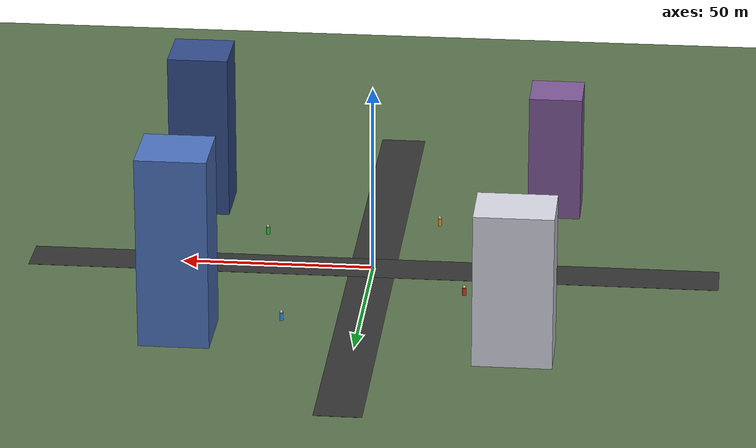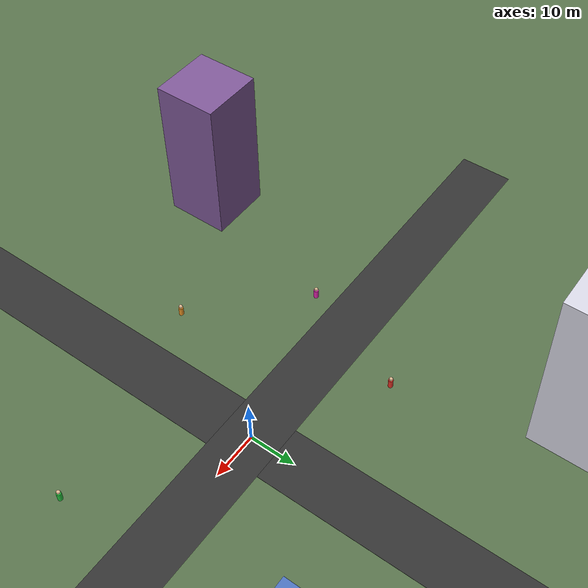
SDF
<sdf version="1.9">
 <world name="mirl_demo">
  <physics name="1ms" type="ignored">
   <max_step_size>0.001</max_step_size>
   <real_time_factor>1.0</real_time_factor>
  </physics>
  <plugin filename="gz-sim-physics-system" name="gz::sim::systems::Physics"/>
  <plugin filename="gz-sim-scene-broadcaster-system" name="gz::sim::systems::SceneBroadcaster"/>
  <plugin filename="gz-sim-user-commands-system" name="gz::sim::systems::UserCommands"/>
  <plugin filename="gz-sim-sensors-system" name="gz::sim::systems::Sensors">
   <render_engine>ogre2</render_engine>
  </plugin>
  <plugin filename="gz-sim-contact-system" name="gz::sim::systems::Contact"/>
  <scene><ambient>0.6 0.6 0.7 1</ambient><background>0.4 0.6 0.9 1</background><shadows>true</shadows></scene>
  <light type="directional" name="sun">
   <pose>50 50 100 0 0 0</pose>
   <diffuse>1.0 0.95 0.9 1</diffuse>
   <specular>0.5 0.5 0.5 1</specular>
   <attenuation>
    <range>1000</range>
    <constant>0.9</constant>
    <linear>0.01</linear>
    <quadratic>0.001</quadratic>
   </attenuation>
   <direction>-0.5 -0.3 -0.9</direction>
  </light>
  <model name="ground_plane">
   <static>true</static>
   <link name="link">
    <collision name="collision">
     <geometry><plane><normal>0 0 1</normal><size>200 200</size></plane></geometry>
    </collision>
    <visual name="visual">
     <geometry><plane><normal>0 0 1</normal><size>200 200</size></plane></geometry>
     <material>
      <ambient>0.3 0.4 0.25 1</ambient>
      <diffuse>0.35 0.45 0.3 1</diffuse>
      <specular>0.1 0.1 0.1 1</specular>
     </material>
    </visual>
   </link>
  </model>
  <model name="road_ew">
   <static>true</static>
   <pose>0 0 0.02 0 0 0</pose>
   <link name="link">
    <visual name="visual">
     <geometry><box><size>180 12 0.04</size></box></geometry>
     <material><ambient>0.15 0.15 0.15 1</ambient><diffuse>0.2 0.2 0.2 1</diffuse></material>
    </visual>
   </link>
  </model>
  <model name="road_ns">
   <static>true</static>
   <pose>0 0 0.02 0 0 0</pose>
   <link name="link">
    <visual name="visual">
     <geometry><box><size>12 180 0.04</size></box></geometry>
     <material><ambient>0.15 0.15 0.15 1</ambient><diffuse>0.2 0.2 0.2 1</diffuse></material>
    </visual>
   </link>
  </model>
  <model name="building_ne">
   <static>true</static>
   <pose>45 45 25 0 0 0</pose>
   <link name="link">
    <visual name="visual">
     <geometry><box><size>18 18 50</size></box></geometry>
     <material>
      <ambient>0.2 0.3 0.6 1</ambient>
      <diffuse>0.3 0.45 0.75 1</diffuse>
      <specular>0.8 0.8 0.9 1</specular>
     </material>
    </visual>
   </link>
  </model>
  <model name="building_nw">
   <static>true</static>
   <pose>-40 50 20 0 0 0</pose>
   <link name="link">
    <visual name="visual">
     <geometry><box><size>20 16 40</size></box></geometry>
     <material><ambient>0.75 0.75 0.8 1</ambient><diffuse>0.85 0.85 0.9 1</diffuse></material>
    </visual>
   </link>
  </model>
  <model name="building_se">
   <static>true</static>
   <pose>50 -40 22 0 0 0</pose>
   <link name="link">
    <visual name="visual">
     <geometry><box><size>16 16 44</size></box></geometry>
     <material><ambient>0.15 0.2 0.45 1</ambient><diffuse>0.2 0.3 0.55 1</diffuse></material>
    </visual>
   </link>
  </model>
  <model name="building_sw">
   <static>true</static>
   <pose>-45 -45 17 0 0 0</pose>
   <link name="link">
    <visual name="visual">
     <geometry><box><size>14 14 34</size></box></geometry>
     <material><ambient>0.4 0.25 0.5 1</ambient><diffuse>0.5 0.35 0.6 1</diffuse></material>
    </visual>
   </link>
  </model>
  <model name="base_station">
   <static>true</static>
   <pose>50 50 0 0 0 0</pose>
   <link name="tower">
    <visual name="tower_visual">
     <pose>0 0 7 0 0 0</pose>
     <geometry><cylinder><radius>0.6</radius><length>14</length></cylinder></geometry>
     <material><ambient>0.5 0.15 0.15 1</ambient><diffuse>0.6 0.2 0.2 1</diffuse></material>
    </visual>
    <visual name="antenna1">
     <pose>1.2 0 12 0 0 0</pose>
     <geometry><box><size>0.3 1.0 1.8</size></box></geometry>
     <material><ambient>0.4 0.4 0.45 1</ambient><diffuse>0.5 0.5 0.55 1</diffuse></material>
    </visual>
    <visual name="antenna2">
     <pose>-0.6 1.0 12 0 0 2.094</pose>
     <geometry><box><size>0.3 1.0 1.8</size></box></geometry>
     <material><ambient>0.4 0.4 0.45 1</ambient><diffuse>0.5 0.5 0.55 1</diffuse></material>
    </visual>
    <visual name="antenna3">
     <pose>-0.6 -1.0 12 0 0 -2.094</pose>
     <geometry><box><size>0.3 1.0 1.8</size></box></geometry>
     <material><ambient>0.4 0.4 0.45 1</ambient><diffuse>0.5 0.5 0.55 1</diffuse></material>
    </visual>
    <visual name="beacon">
     <pose>0 0 14.5 0 0 0</pose>
     <geometry><sphere><radius>0.4</radius></sphere></geometry>
     <material>
      <ambient>1.0 0.1 0.05 1</ambient>
      <diffuse>1.0 0.2 0.1 1</diffuse>
      <emissive>1.0 0.1 0.05 1</emissive>
     </material>
    </visual>
   </link>
  </model>
  <model name="user_1">
   <static>true</static>
   <pose>-25 15 0 0 0 0</pose>
   <link name="link">
    <visual name="body">
     <pose>0 0 1 0 0 0</pose>
     <geometry><cylinder><radius>0.5</radius><length>2</length></cylinder></geometry>
     <material><ambient>0.8 0.15 0.1 1</ambient><diffuse>0.9 0.2 0.15 1</diffuse></material>
    </visual>
    <visual name="head">
     <pose>0 0 2.3 0 0 0</pose>
     <geometry><sphere><radius>0.4</radius></sphere></geometry>
     <material><ambient>0.85 0.7 0.55 1</ambient><diffuse>0.9 0.75 0.6 1</diffuse></material>
    </visual>
   </link>
  </model>
  <model name="user_2">
   <static>true</static>
   <pose>30 -20 0 0 0 0</pose>
   <link name="link">
    <visual name="body">
     <pose>0 0 1 0 0 0</pose>
     <geometry><cylinder><radius>0.5</radius><length>2</length></cylinder></geometry>
     <material><ambient>0.1 0.7 0.2 1</ambient><diffuse>0.15 0.8 0.25 1</diffuse></material>
    </visual>
    <visual name="head">
     <pose>0 0 2.3 0 0 0</pose>
     <geometry><sphere><radius>0.4</radius></sphere></geometry>
     <material><ambient>0.85 0.7 0.55 1</ambient><diffuse>0.9 0.75 0.6 1</diffuse></material>
    </visual>
   </link>
  </model>
  <model name="user_3">
   <static>true</static>
   <pose>-15 -30 0 0 0 0</pose>
   <link name="link">
    <visual name="body">
     <pose>0 0 1 0 0 0</pose>
     <geometry><cylinder><radius>0.5</radius><length>2</length></cylinder></geometry>
     <material><ambient>0.9 0.5 0.1 1</ambient><diffuse>0.95 0.6 0.15 1</diffuse></material>
    </visual>
    <visual name="head">
     <pose>0 0 2.3 0 0 0</pose>
     <geometry><sphere><radius>0.4</radius></sphere></geometry>
     <material><ambient>0.85 0.7 0.55 1</ambient><diffuse>0.9 0.75 0.6 1</diffuse></material>
    </visual>
   </link>
  </model>
  <model name="user_4">
   <static>true</static>
   <pose>20 35 0 0 0 0</pose>
   <link name="link">
    <visual name="body">
     <pose>0 0 1 0 0 0</pose>
     <geometry><cylinder><radius>0.5</radius><length>2</length></cylinder></geometry>
     <material><ambient>0.15 0.5 0.9 1</ambient><diffuse>0.2 0.6 0.95 1</diffuse></material>
    </visual>
    <visual name="head">
     <pose>0 0 2.3 0 0 0</pose>
     <geometry><sphere><radius>0.4</radius></sphere></geometry>
     <material><ambient>0.85 0.7 0.55 1</ambient><diffuse>0.9 0.75 0.6 1</diffuse></material>
    </visual>
   </link>
  </model>
  <model name="user_5">
   <static>true</static>
   <pose>-35 -10 0 0 0 0</pose>
   <link name="link">
    <visual name="body">
     <pose>0 0 1 0 0 0</pose>
     <geometry><cylinder><radius>0.5</radius><length>2</length></cylinder></geometry>
     <material><ambient>0.8 0.1 0.6 1</ambient><diffuse>0.9 0.15 0.7 1</diffuse></material>
    </visual>
    <visual name="head">
     <pose>0 0 2.3 0 0 0</pose>
     <geometry><sphere><radius>0.4</radius></sphere></geometry>
     <material><ambient>0.85 0.7 0.55 1</ambient><diffuse>0.9 0.75 0.6 1</diffuse></material>
    </visual>
   </link>
  </model>
 </world>
</sdf>
